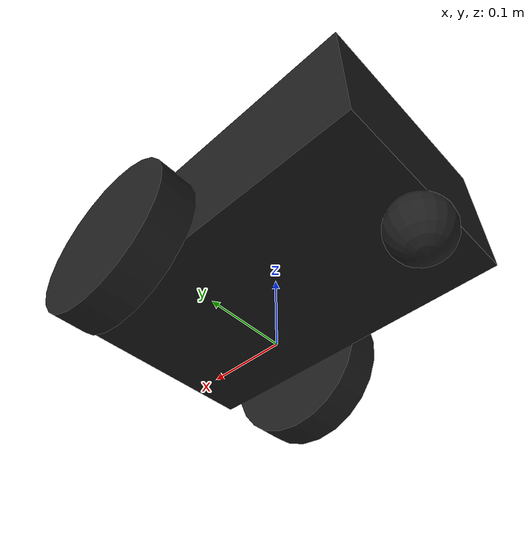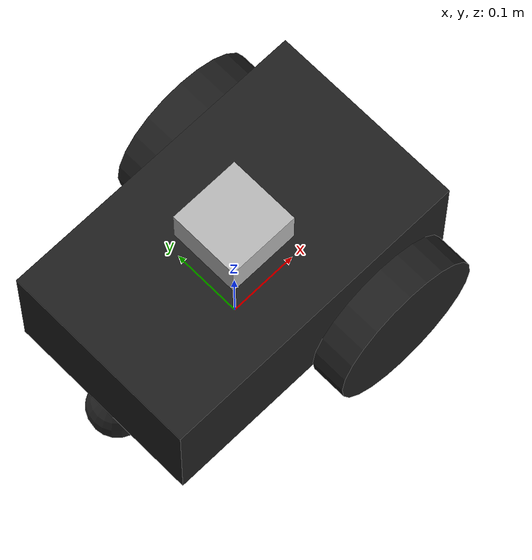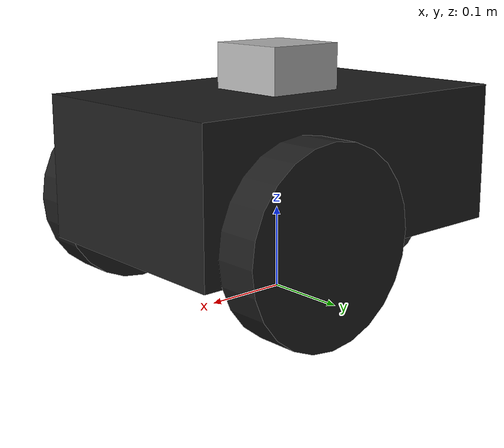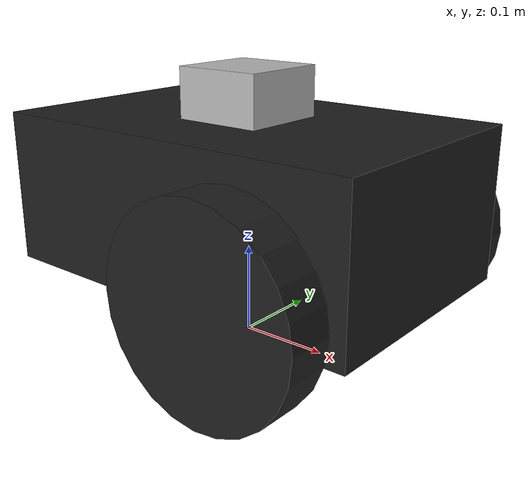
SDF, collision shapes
<?xml version="1.0" ?>
<sdf version="1.5">
  <model name="pioneer2dx" canonical_link='base_footprint'>
    <plugin
        filename="ignition-gazebo-joint-state-publisher-system"
        name="ignition::gazebo::systems::JointStatePublisher">
    </plugin>

    <link name='base_footprint'/>

    <joint name='footprint_to_base_joint' type='fixed'>
      <pose>0 0 0.01 0 0 0</pose>
      <parent>base_footprint</parent>
      <child>base_link</child>
      <use_parent_model_frame>true</use_parent_model_frame>
    </joint>

    <link name="base_link">
      <pose relative_to='base_footprint'>0 0 0.16 0 0 0</pose>
      <inertial>
        <mass>5.67</mass>
        <inertia>
          <ixx>0.07</ixx>
          <iyy>0.08</iyy>
          <izz>0.10</izz>
          <ixy>0</ixy>
          <ixz>0</ixz>
          <iyz>0</iyz>
        </inertia>
      </inertial>
      <collision name="collision">
        <geometry>
          <box>
            <size>0.445 0.277 0.17</size>
          </box>
        </geometry>
      </collision>
      <visual name="visual">
        <pose>0 0 0.04 0 0 0</pose>
        <geometry>
          <mesh>
            <uri>package://my_sim_tesi_gazebo/models/pioneer2dx/meshes/chassis.dae</uri>
          </mesh>
        </geometry>
      </visual>
      <collision name="caster_collision">
        <pose>-0.200 0 -0.12 0 0 0</pose>
        <geometry>
          <sphere>
            <radius>0.04</radius>
          </sphere>
        </geometry>
        <surface>
          <friction>
            <ode>
              <mu>0</mu>
              <mu2>0</mu2>
              <slip1>1.0</slip1>
              <slip2>1.0</slip2>
            </ode>
          </friction>
        </surface>
      </collision>
      <visual name="caster_visual">
        <pose>-0.200 0 -0.12 0 0 0</pose>
        <geometry>
          <sphere>
            <radius>0.04</radius>
          </sphere>
        </geometry>
        <material>
          <script>
            <uri>file://media/materials/scripts/gazebo.material</uri>
            <name>Gazebo/FlatBlack</name>
          </script>
        </material>
      </visual>
    </link>

    <link name="lidar_link">
      <pose>0 0 0.25 0 0 0</pose>
      <inertial>
        <mass>0.1</mass>
        <inertia>
          <ixx>0.000166667</ixx>
          <iyy>0.000166667</iyy>
          <izz>0.000166667</izz>
        </inertia>
      </inertial>
      <collision name="collision">
        <geometry>
          <box>
            <size>0.1 0.1 0.1</size>
          </box>
        </geometry>
      </collision>
      <visual name="visual">
        <geometry>
          <box>
            <size>0.1 0.1 0.1</size>
          </box>
        </geometry>
      </visual>

      <sensor name='front_lidar' type='gpu_lidar'>
        <pose>0 0 0 0 0 0</pose>
        <topic>/model/robot_scan/scan</topic>
        <ignition_frame_id>robot_scan/lidar_link</ignition_frame_id>
        <update_rate>20</update_rate>
        <lidar>
          <scan>
            <horizontal>
              <samples>450</samples> <!-- 450 for simulation and 1200 for scanning -->
              <resolution>1</resolution>
              <min_angle>-3.1459</min_angle>
              <max_angle>3.1459</max_angle>
            </horizontal>
            <vertical>
              <samples>16</samples>
              <resolution>1</resolution>
              <min_angle>-0.261799</min_angle>
              <max_angle>0.261799</max_angle>
            </vertical>
          </scan>
          <range>
            <min>0.05</min>
            <max>5</max> <!-- 5 for simulation and 15 for scanning-->
            <resolution>0.01</resolution>
          </range>
          <noise>
            <type>gaussian</type>
            <mean>0</mean>
            <stddev>0.01</stddev>
          </noise>
        </lidar>
        <visualize>true</visualize>
      </sensor>

      <!-- 新增RGBD相机传感器 -->
      <sensor name="rgbd_camera" type="rgbd">
        <pose>0.05 0 1.05 0 0 0</pose>
        <update_rate>15</update_rate>
        <camera name="head">
          <horizontal_fov>1.3962634</horizontal_fov>
          <image>
            <width>640</width>
            <height>480</height>
            <format>R8G8B8</format>
          </image>
          <clip>
            <near>0.2</near>
            <far>20.0</far>
          </clip>
        </camera>
        <topic>/model/robot_scan/rgbd_camera/image_raw</topic>
        <depth_camera>
          <topic>/model/robot_scan/rgbd_camera/depth/image_raw</topic>
          <camera_info_topic>/model/robot_scan/rgbd_camera/depth/camera_info</camera_info_topic>
          <format>L16</format>
          <point_cloud_topic>/model/robot_scan/rgbd_camera/points</point_cloud_topic>
        </depth_camera>
        <always_on>1</always_on>
        <visualize>1</visualize>
      </sensor>

    </link>

    <link name="right_wheel">
      <pose relative_to='base_link'>0.1 -0.17 -0.05 1.5707 0 0</pose>
      <inertial>
        <mass>1.5</mass>
        <inertia>
          <ixx>0.0051</ixx>
          <iyy>0.0051</iyy>
          <izz>0.0090</izz>
          <ixy>0</ixy>
          <ixz>0</ixz>
          <iyz>0</iyz>
        </inertia>
      </inertial>
      <collision name="collision">
        <geometry>
          <cylinder>
            <radius>0.11</radius>
            <length>0.05</length>
          </cylinder>
        </geometry>
        <surface>
          <friction>
            <ode>
              <mu>100000.0</mu>
              <mu2>100000.0</mu2>
              <slip1>0.0</slip1>
              <slip2>0.0</slip2>
            </ode>
          </friction>
        </surface>
      </collision>
      <visual name="visual">
        <geometry>
          <cylinder>
            <radius>0.11</radius>
            <length>0.05</length>
          </cylinder>
        </geometry>
        <material>
          <script>
            <uri>file://media/materials/scripts/gazebo.material</uri>
            <name>Gazebo/FlatBlack</name>
          </script>
        </material>
      </visual>
    </link>
    <link name="left_wheel">
      <pose relative_to='base_link'>0.1 0.17 -0.05 -1.5707 0 0</pose>
      <inertial>
        <mass>1.5</mass>
        <inertia>
          <ixx>0.0051</ixx>
          <iyy>0.0051</iyy>
          <izz>0.0090</izz>
          <ixy>0</ixy>
          <ixz>0</ixz>
          <iyz>0</iyz>
        </inertia>
      </inertial>
      <collision name="collision">
        <geometry>
          <cylinder>
            <radius>0.11</radius>
            <length>0.05</length>
          </cylinder>
        </geometry>
        <surface>
          <friction>
            <ode>
              <mu>100000.0</mu>
              <mu2>100000.0</mu2>
              <slip1>0.0</slip1>
              <slip2>0.0</slip2>
            </ode>
          </friction>
        </surface>
      </collision>
      <visual name="visual">
        <geometry>
          <cylinder>
            <radius>0.11</radius>
            <length>0.05</length>
          </cylinder>
        </geometry>
        <material>
          <script>
            <uri>file://media/materials/scripts/gazebo.material</uri>
            <name>Gazebo/FlatBlack</name>
          </script>
        </material>
      </visual>
    </link>

    <joint name='lidar_joint' type='fixed'>
      <parent>base_link</parent>
      <child>lidar_link</child>
    </joint>

    <joint name='left_wheel_joint' type='revolute'>
      <pose relative_to='left_wheel'/>
      <parent>base_link</parent>
      <child>left_wheel</child>
      <use_parent_model_frame>true</use_parent_model_frame>
      <axis>
        <xyz expressed_in='__model__'>0 1 0</xyz>
        <limit>
          <lower>-1.79769e+308</lower>
          <upper>1.79769e+308</upper>
          <effort>10</effort>
          <velocity>10</velocity>
        </limit>
      </axis>
    </joint>

    <joint name='right_wheel_joint' type='revolute'>
      <pose relative_to='right_wheel'/>
      <parent>base_link</parent>
      <child>right_wheel</child>
      <use_parent_model_frame>true</use_parent_model_frame>
      <axis>
        <xyz expressed_in='__model__'>0 1 0</xyz>
        <limit>
          <lower>-1.79769e+308</lower>
          <upper>1.79769e+308</upper>
          <effort>10</effort>
          <velocity>10</velocity>
        </limit>
      </axis>
    </joint>

    <plugin filename="ignition-gazebo-diff-drive-system" name="ignition::gazebo::systems::DiffDrive">
      <left_joint>left_wheel_joint</left_joint>
      <right_joint>right_wheel_joint</right_joint>
      <wheel_separation>0.34</wheel_separation>
      <wheel_radius>0.11</wheel_radius>
      <odom_publish_frequency>5</odom_publish_frequency>
      <frame_id>robot_scan/odom</frame_id>
      <child_frame_id>robot_scan/base_link</child_frame_id>
      <max_linear_acceleration>1.5</max_linear_acceleration>
      <min_linear_acceleration>-1.5</min_linear_acceleration>
      <max_angular_acceleration>1.6</max_angular_acceleration>
      <min_angular_acceleration>-1.6</min_angular_acceleration>
      <max_linear_velocity>0.4</max_linear_velocity>
      <min_linear_velocity>-0.4</min_linear_velocity>
      <max_angular_velocity>1</max_angular_velocity>
      <min_angular_velocity>-1</min_angular_velocity>
    </plugin>

    <!-- Moving Forward-->
    <plugin filename="libignition-gazebo-triggered-publisher-system.so" name="ignition::gazebo::systems::TriggeredPublisher">
      <input type="ignition.msgs.Int32" topic="/keyboard/keypress">
        <match field="data">16777235</match>
      </input>
      <output type="ignition.msgs.Twist" topic="/model/robot_scan/cmd_vel">
        linear: {x: 0.4}, angular: {z: 0.0}
      </output>
    </plugin>

    <!-- Moving Backward-->
    <plugin filename="libignition-gazebo-triggered-publisher-system.so" name="ignition::gazebo::systems::TriggeredPublisher">
      <input type="ignition.msgs.Int32" topic="/keyboard/keypress">
        <match field="data">16777237</match>
      </input>
      <output type="ignition.msgs.Twist" topic="/model/robot_scan/cmd_vel">
        linear: {x: -0.4}, angular: {z: 0.0}
      </output>
    </plugin>

    <!-- Moving Left-->
    <plugin filename="libignition-gazebo-triggered-publisher-system.so" name="ignition::gazebo::systems::TriggeredPublisher">
      <input type="ignition.msgs.Int32" topic="/keyboard/keypress">
        <match field="data">16777234</match>
      </input>
      <output type="ignition.msgs.Twist" topic="/model/robot_scan/cmd_vel">
        linear: {x: 0.0}, angular: {z: 1}
      </output>
    </plugin>

    <!-- Moving Right-->
    <plugin filename="libignition-gazebo-triggered-publisher-system.so" name="ignition::gazebo::systems::TriggeredPublisher">
      <input type="ignition.msgs.Int32" topic="/keyboard/keypress">
        <match field="data">16777236</match>
      </input>
      <output type="ignition.msgs.Twist" topic="/model/robot_scan/cmd_vel">
        linear: {x: 0.0}, angular: {z: -1}
      </output>
    </plugin>

    <!-- Stop Moving-->
    <plugin filename="libignition-gazebo-triggered-publisher-system.so" name="ignition::gazebo::systems::TriggeredPublisher">
      <input type="ignition.msgs.Int32" topic="/keyboard/keypress">
        <match field="data">83</match>        <!--83 is the key s-->
      </input>
      <output type="ignition.msgs.Twist" topic="/model/robot_scan/cmd_vel">
        linear: {x: 0.0}, angular: {z: 0.0}
      </output>
    </plugin>
  </model>
</sdf>
